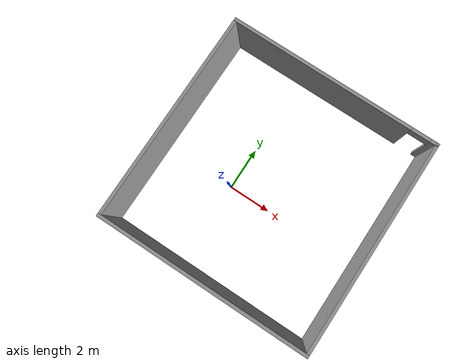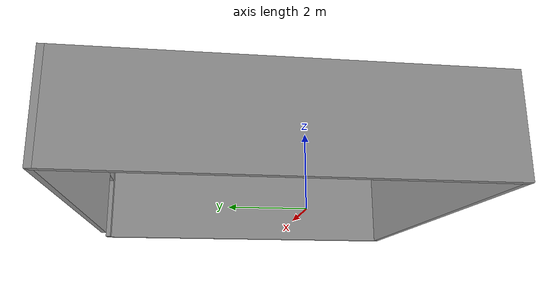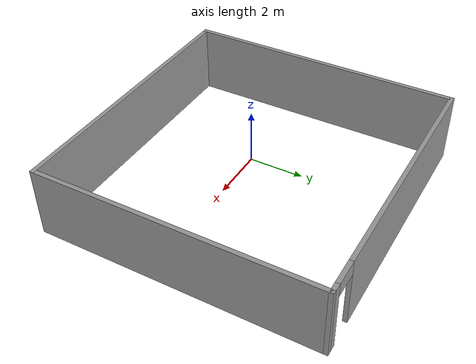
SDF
<?xml version='1.0'?>
<sdf version='1.7'>
  <model name='small_box_world'>
    <pose>1.475 0.975 0 0 -0 0</pose>
    <link name='Wall_0'>
      <collision name='Wall_0_Collision'>
        <geometry>
          <box>
            <size>10 0.15 2.5</size>
          </box>
        </geometry>
        <pose>0 0 1.25 0 -0 0</pose>
      </collision>
      <visual name='Wall_0_Visual'>
        <pose>0 0 1.25 0 -0 0</pose>
        <geometry>
          <box>
            <size>10 0.15 2.5</size>
          </box>
        </geometry>
        <material>
          <script>
            <uri>file://media/materials/scripts/gazebo.material</uri>
            <name>Gazebo/Grey</name>
          </script>
          <ambient>1 1 1 1</ambient>
        </material>
        <meta>
          <layer>0</layer>
        </meta>
      </visual>
      <pose>-0 -4.925 0 0 -0 0</pose>
    </link>
    <link name='Wall_2'>
      <collision name='Wall_2_Collision'>
        <geometry>
          <box>
            <size>10 0.15 2.5</size>
          </box>
        </geometry>
        <pose>0 0 1.25 0 -0 0</pose>
      </collision>
      <visual name='Wall_2_Visual'>
        <pose>0 0 1.25 0 -0 0</pose>
        <geometry>
          <box>
            <size>10 0.15 2.5</size>
          </box>
        </geometry>
        <material>
          <script>
            <uri>file://media/materials/scripts/gazebo.material</uri>
            <name>Gazebo/Grey</name>
          </script>
          <ambient>1 1 1 1</ambient>
        </material>
        <meta>
          <layer>0</layer>
        </meta>
      </visual>
      <pose>4.925 0 0 0 -0 1.5708</pose>
    </link>
    <link name='Wall_3'>
      <pose>-0 4.925 0 0 -0 3.14159</pose>
      <visual name='Wall_3_Visual_0'>
        <pose>-4.8012 0 1.25 0 -0 0</pose>
        <geometry>
          <box>
            <size>0.397605 0.15 2.5</size>
          </box>
        </geometry>
        <material>
          <script>
            <uri>file://media/materials/scripts/gazebo.material</uri>
            <name>Gazebo/Grey</name>
          </script>
          <ambient>1 1 1 1</ambient>
        </material>
        <meta>
          <layer>0</layer>
        </meta>
      </visual>
      <collision name='Wall_3_Collision_0'>
        <geometry>
          <box>
            <size>0.397605 0.15 2.5</size>
          </box>
        </geometry>
        <pose>-4.8012 0 1.25 0 -0 0</pose>
      </collision>
      <visual name='Wall_3_Visual_1'>
        <pose>0.648803 0 1.25 0 -0 0</pose>
        <geometry>
          <box>
            <size>8.70239 0.15 2.5</size>
          </box>
        </geometry>
        <material>
          <script>
            <uri>file://media/materials/scripts/gazebo.material</uri>
            <name>Gazebo/Grey</name>
          </script>
          <ambient>1 1 1 1</ambient>
        </material>
        <meta>
          <layer>0</layer>
        </meta>
      </visual>
      <collision name='Wall_3_Collision_1'>
        <geometry>
          <box>
            <size>8.70239 0.15 2.5</size>
          </box>
        </geometry>
        <pose>0.648803 0 1.25 0 -0 0</pose>
      </collision>
      <visual name='Wall_3_Visual_2'>
        <pose>-4.1524 0 2.25 0 -0 0</pose>
        <geometry>
          <box>
            <size>0.9 0.15 0.5</size>
          </box>
        </geometry>
        <material>
          <script>
            <uri>file://media/materials/scripts/gazebo.material</uri>
            <name>Gazebo/Grey</name>
          </script>
          <ambient>1 1 1 1</ambient>
        </material>
        <meta>
          <layer>0</layer>
        </meta>
      </visual>
      <collision name='Wall_3_Collision_2'>
        <geometry>
          <box>
            <size>0.9 0.15 0.5</size>
          </box>
        </geometry>
        <pose>-4.1524 0 2.25 0 -0 0</pose>
      </collision>
    </link>
    <link name='Wall_4'>
      <collision name='Wall_4_Collision'>
        <geometry>
          <box>
            <size>10 0.15 2.5</size>
          </box>
        </geometry>
        <pose>0 0 1.25 0 -0 0</pose>
      </collision>
      <visual name='Wall_4_Visual'>
        <pose>0 0 1.25 0 -0 0</pose>
        <geometry>
          <box>
            <size>10 0.15 2.5</size>
          </box>
        </geometry>
        <material>
          <script>
            <uri>file://media/materials/scripts/gazebo.material</uri>
            <name>Gazebo/Grey</name>
          </script>
          <ambient>1 1 1 1</ambient>
        </material>
        <meta>
          <layer>0</layer>
        </meta>
      </visual>
      <pose>-4.925 0 0 0 -0 -1.5708</pose>
    </link>
    <static>1</static>
  </model>
</sdf>
